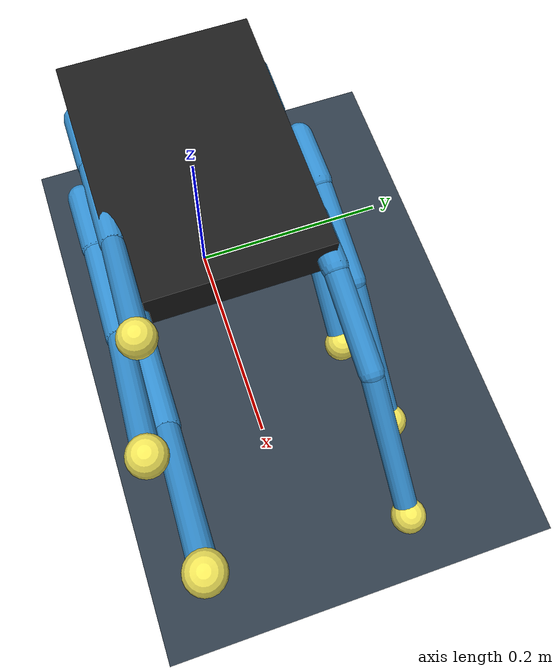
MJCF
<mujoco model="phantomx_ax12_hexapod_18dof">
  <compiler angle="radian"/>
  <option timestep="0.005" gravity="0 0 -9.81" integrator="RK4"/>

  <default>
    <geom density="700" friction="1.0 0.1 0.1"/>
    <joint damping="1.2" armature="0.01"/>
    <position kp="35" ctrllimited="true"/>
  </default>

  <asset>
    <texture name="grid" type="2d" builtin="checker" width="512" height="512" rgb1="0.15 0.2 0.25" rgb2="0.2 0.25 0.3"/>
    <material name="ground_mat" texture="grid" texrepeat="6 6" reflectance="0.1"/>
    <material name="body_mat" rgba="0.1 0.1 0.1 1"/>
    <material name="leg_mat" rgba="0.2 0.55 0.8 1"/>
    <material name="foot_mat" rgba="0.95 0.9 0.35 1"/>
  </asset>

  <worldbody>
    <light pos="0 0 3" diffuse="1 1 1"/>
    <geom name="ground" type="plane" size="5 5 0.1" material="ground_mat"/>

    <body name="base" pos="0 0 0.20">
      <freejoint/>
      <geom name="base_geom" type="box" size="0.12 0.09 0.025" material="body_mat"/>

      <body name="lf_coxa" pos="0.08 0.085 0">
        <joint name="lf_coxa_joint" type="hinge" axis="0 0 1" range="-0.8 0.8"/>
        <geom type="capsule" fromto="0 0 0 0.05 0 0" size="0.012" material="leg_mat"/>
        <body name="lf_femur" pos="0.05 0 0">
          <joint name="lf_femur_joint" type="hinge" axis="0 1 0" range="-0.9 0.9"/>
          <geom type="capsule" fromto="0 0 0 0.09 0 -0.02" size="0.011" material="leg_mat"/>
          <body name="lf_tibia" pos="0.09 0 -0.02">
            <joint name="lf_tibia_joint" type="hinge" axis="0 1 0" range="-1.2 0.2"/>
            <geom type="capsule" fromto="0 0 0 0.11 0 -0.07" size="0.010" material="leg_mat"/>
            <geom name="lf_foot" type="sphere" pos="0.11 0 -0.07" size="0.015" material="foot_mat"/>
          </body>
        </body>
      </body>

      <body name="lm_coxa" pos="0.0 0.10 0">
        <joint name="lm_coxa_joint" type="hinge" axis="0 0 1" range="-0.8 0.8"/>
        <geom type="capsule" fromto="0 0 0 0.05 0 0" size="0.012" material="leg_mat"/>
        <body name="lm_femur" pos="0.05 0 0">
          <joint name="lm_femur_joint" type="hinge" axis="0 1 0" range="-0.9 0.9"/>
          <geom type="capsule" fromto="0 0 0 0.09 0 -0.02" size="0.011" material="leg_mat"/>
          <body name="lm_tibia" pos="0.09 0 -0.02">
            <joint name="lm_tibia_joint" type="hinge" axis="0 1 0" range="-1.2 0.2"/>
            <geom type="capsule" fromto="0 0 0 0.11 0 -0.07" size="0.010" material="leg_mat"/>
            <geom name="lm_foot" type="sphere" pos="0.11 0 -0.07" size="0.015" material="foot_mat"/>
          </body>
        </body>
      </body>

      <body name="lr_coxa" pos="-0.08 0.085 0">
        <joint name="lr_coxa_joint" type="hinge" axis="0 0 1" range="-0.8 0.8"/>
        <geom type="capsule" fromto="0 0 0 0.05 0 0" size="0.012" material="leg_mat"/>
        <body name="lr_femur" pos="0.05 0 0">
          <joint name="lr_femur_joint" type="hinge" axis="0 1 0" range="-0.9 0.9"/>
          <geom type="capsule" fromto="0 0 0 0.09 0 -0.02" size="0.011" material="leg_mat"/>
          <body name="lr_tibia" pos="0.09 0 -0.02">
            <joint name="lr_tibia_joint" type="hinge" axis="0 1 0" range="-1.2 0.2"/>
            <geom type="capsule" fromto="0 0 0 0.11 0 -0.07" size="0.010" material="leg_mat"/>
            <geom name="lr_foot" type="sphere" pos="0.11 0 -0.07" size="0.015" material="foot_mat"/>
          </body>
        </body>
      </body>

      <body name="rf_coxa" pos="0.08 -0.085 0">
        <joint name="rf_coxa_joint" type="hinge" axis="0 0 -1" range="-0.8 0.8"/>
        <geom type="capsule" fromto="0 0 0 0.05 0 0" size="0.012" material="leg_mat"/>
        <body name="rf_femur" pos="0.05 0 0">
          <joint name="rf_femur_joint" type="hinge" axis="0 -1 0" range="-0.9 0.9"/>
          <geom type="capsule" fromto="0 0 0 0.09 0 0.02" size="0.011" material="leg_mat"/>
          <body name="rf_tibia" pos="0.09 0 0.02">
            <joint name="rf_tibia_joint" type="hinge" axis="0 -1 0" range="-1.2 0.2"/>
            <geom type="capsule" fromto="0 0 0 0.11 0 0.07" size="0.010" material="leg_mat"/>
            <geom name="rf_foot" type="sphere" pos="0.11 0 0.07" size="0.015" material="foot_mat"/>
          </body>
        </body>
      </body>

      <body name="rm_coxa" pos="0.0 -0.10 0">
        <joint name="rm_coxa_joint" type="hinge" axis="0 0 -1" range="-0.8 0.8"/>
        <geom type="capsule" fromto="0 0 0 0.05 0 0" size="0.012" material="leg_mat"/>
        <body name="rm_femur" pos="0.05 0 0">
          <joint name="rm_femur_joint" type="hinge" axis="0 -1 0" range="-0.9 0.9"/>
          <geom type="capsule" fromto="0 0 0 0.09 0 0.02" size="0.011" material="leg_mat"/>
          <body name="rm_tibia" pos="0.09 0 0.02">
            <joint name="rm_tibia_joint" type="hinge" axis="0 -1 0" range="-1.2 0.2"/>
            <geom type="capsule" fromto="0 0 0 0.11 0 0.07" size="0.010" material="leg_mat"/>
            <geom name="rm_foot" type="sphere" pos="0.11 0 0.07" size="0.015" material="foot_mat"/>
          </body>
        </body>
      </body>

      <body name="rr_coxa" pos="-0.08 -0.085 0">
        <joint name="rr_coxa_joint" type="hinge" axis="0 0 -1" range="-0.8 0.8"/>
        <geom type="capsule" fromto="0 0 0 0.05 0 0" size="0.012" material="leg_mat"/>
        <body name="rr_femur" pos="0.05 0 0">
          <joint name="rr_femur_joint" type="hinge" axis="0 -1 0" range="-0.9 0.9"/>
          <geom type="capsule" fromto="0 0 0 0.09 0 0.02" size="0.011" material="leg_mat"/>
          <body name="rr_tibia" pos="0.09 0 0.02">
            <joint name="rr_tibia_joint" type="hinge" axis="0 -1 0" range="-1.2 0.2"/>
            <geom type="capsule" fromto="0 0 0 0.11 0 0.07" size="0.010" material="leg_mat"/>
            <geom name="rr_foot" type="sphere" pos="0.11 0 0.07" size="0.015" material="foot_mat"/>
          </body>
        </body>
      </body>
    </body>
  </worldbody>

  <actuator>
    <position name="lf_coxa_motor" joint="lf_coxa_joint" ctrlrange="-0.8 0.8"/>
    <position name="lf_femur_motor" joint="lf_femur_joint" ctrlrange="-0.9 0.9"/>
    <position name="lf_tibia_motor" joint="lf_tibia_joint" ctrlrange="-1.2 0.2"/>

    <position name="lm_coxa_motor" joint="lm_coxa_joint" ctrlrange="-0.8 0.8"/>
    <position name="lm_femur_motor" joint="lm_femur_joint" ctrlrange="-0.9 0.9"/>
    <position name="lm_tibia_motor" joint="lm_tibia_joint" ctrlrange="-1.2 0.2"/>

    <position name="lr_coxa_motor" joint="lr_coxa_joint" ctrlrange="-0.8 0.8"/>
    <position name="lr_femur_motor" joint="lr_femur_joint" ctrlrange="-0.9 0.9"/>
    <position name="lr_tibia_motor" joint="lr_tibia_joint" ctrlrange="-1.2 0.2"/>

    <position name="rf_coxa_motor" joint="rf_coxa_joint" ctrlrange="-0.8 0.8"/>
    <position name="rf_femur_motor" joint="rf_femur_joint" ctrlrange="-0.9 0.9"/>
    <position name="rf_tibia_motor" joint="rf_tibia_joint" ctrlrange="-1.2 0.2"/>

    <position name="rm_coxa_motor" joint="rm_coxa_joint" ctrlrange="-0.8 0.8"/>
    <position name="rm_femur_motor" joint="rm_femur_joint" ctrlrange="-0.9 0.9"/>
    <position name="rm_tibia_motor" joint="rm_tibia_joint" ctrlrange="-1.2 0.2"/>

    <position name="rr_coxa_motor" joint="rr_coxa_joint" ctrlrange="-0.8 0.8"/>
    <position name="rr_femur_motor" joint="rr_femur_joint" ctrlrange="-0.9 0.9"/>
    <position name="rr_tibia_motor" joint="rr_tibia_joint" ctrlrange="-1.2 0.2"/>
  </actuator>
</mujoco>
